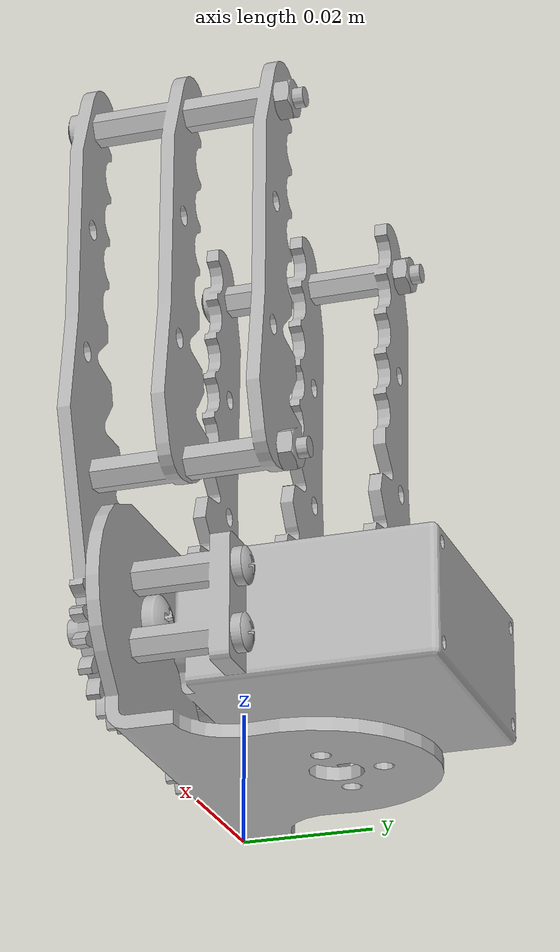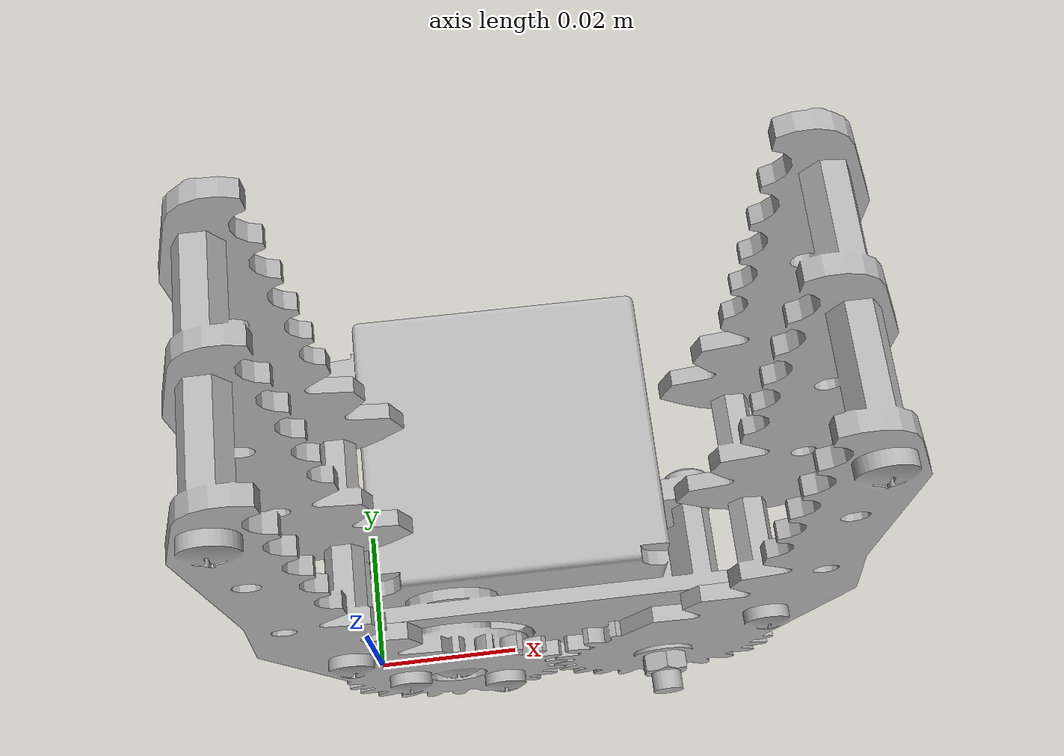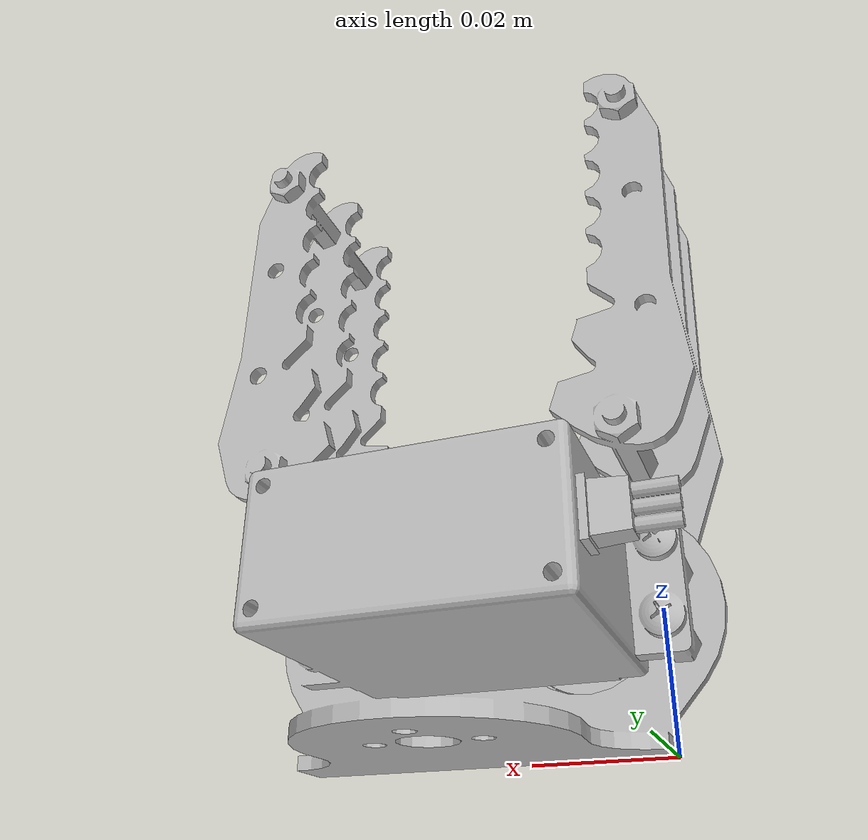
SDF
<?xml version="1.0"?>
<sdf version="1.9">
  <model name="gripper3">
    <static>false</static>
    <self_collide>false</self_collide>

    <link name="base_link">
      <pose>0 0 0 0 0 0</pose>
      <inertial>
        <pose>0.022563 0.018368 -0.0176 0 0 0</pose>
        <mass>0.085138</mass>
        <inertia>
          <ixx>1.5815e-05</ixx>
          <ixy>5.4955e-07</ixy>
          <ixz>-7.279e-07</ixz>
          <iyy>2.219e-05</iyy>
          <iyz>2.9639e-06</iyz>
          <izz>2.4841e-05</izz>
        </inertia>
      </inertial>

      <collision name="base_link_collision">
        <pose>0 0 0 0 0 0</pose>
        <geometry>
          <mesh>
            <scale>1 1 1</scale>
            <uri>model://gripper3/meshes/base_link.STL</uri>
          </mesh>
        </geometry>
      </collision>

      <visual name="base_link_visual">
        <pose>0 0 0 0 0 0</pose>
        <geometry>
          <mesh>
            <scale>1 1 1</scale>
            <uri>model://gripper3/meshes/base_link.STL</uri>
          </mesh>
        </geometry>
      </visual>
    </link>

    <link name="Empty_Link1">
      <pose>0.04 0 0.02 1.5708 0.90665 0</pose>
      <inertial>
        <pose>-0.021122 0.028354 -0.005583 0 0 0</pose>
        <mass>0.1</mass>
        <inertia>
          <ixx>1.1931e-05</ixx>
          <ixy>8.7376e-06</ixy>
          <ixz>-1.3248e-16</ixz>
          <iyy>8.789e-06</iyy>
          <iyz>-2.1751e-17</iyz>
          <izz>2.0324e-05</izz>
        </inertia>
      </inertial>

      <collision name="Empty_Link1_collision">
        <pose>0 0 0 0 0 0</pose>
        <geometry>
          <mesh>
            <scale>1 1 1</scale>
            <uri>model://gripper3/meshes/Empty_Link1.STL</uri>
          </mesh>
        </geometry>
        <surface>
          <friction>
            <ode>
              <mu>1</mu>
              <mu2>1</mu2>
            </ode>
          </friction>
        </surface>
      </collision>

      <visual name="Empty_Link1_visual">
        <pose>0 0 0 0 0 0</pose>
        <geometry>
          <mesh>
            <scale>1 1 1</scale>
            <uri>model://gripper3/meshes/Empty_Link1.STL</uri>
          </mesh>
        </geometry>
      </visual>
    </link>

    <joint name="joint1" type="revolute">
      <parent>base_link</parent>
      <child>Empty_Link1</child>
      <axis>
        <xyz>0 0 1</xyz>
        <limit>
          <lower>-0.5</lower>
          <upper>2.0</upper>
          <effort>2.0</effort>
          <velocity>1.0</velocity>
        </limit>
        <dynamics>
          <damping>0.01</damping>
          <friction>0</friction>
          <spring_reference>0</spring_reference>
          <spring_stiffness>0</spring_stiffness>
        </dynamics>
      </axis>
    </joint>

    <link name="Empty_Link2">
      <pose>0.012 0 0.0195 -1.5708 0.96069 3.14159</pose>
      <inertial>
        <pose>-0.019265 -0.025888 -0.004777 0 0 0</pose>
        <mass>0.1</mass>
        <inertia>
          <ixx>1.6519e-06</ixx>
          <ixy>-1.216e-06</ixy>
          <ixz>-7.2546e-17</ixz>
          <iyy>1.5595e-06</iyy>
          <iyz>-3.2073e-16</iyz>
          <izz>2.886e-06</izz>
        </inertia>
      </inertial>

      <collision name="Empty_Link2_collision">
        <pose>0 0 0 0 0 0</pose>
        <geometry>
          <mesh>
            <scale>1 1 1</scale>
            <uri>model://gripper3/meshes/Empty_Link2.STL</uri>
          </mesh>
        </geometry>
        <surface>
          <friction>
            <ode>
              <mu>1</mu>
              <mu2>1</mu2>
            </ode>
          </friction>
        </surface>
      </collision>

      <visual name="Empty_Link2_visual">
        <pose>0 0 0 0 0 0</pose>
        <geometry>
          <mesh>
            <scale>1 1 1</scale>
            <uri>model://gripper3/meshes/Empty_Link2.STL</uri>
          </mesh>
        </geometry>
      </visual>
    </link>

    <joint name="joint2" type="revolute">
      <parent>base_link</parent>
      <child>Empty_Link2</child>
      <axis>
        <xyz>0 0 -1</xyz>
        <limit>
          <lower>-0.5</lower>
          <upper>2.0</upper>
          <effort>2.0</effort>
          <velocity>1.0</velocity>
        </limit>
        <dynamics>
          <damping>0.01</damping>
          <friction>0</friction>
          <spring_reference>0</spring_reference>
          <spring_stiffness>0</spring_stiffness>
        </dynamics>
      </axis>
    </joint>

    <!-- Gazebo Sim / ROS 2 Humble: joint position control for finger 1 -->
    <plugin
      filename="gz-sim-joint-position-controller-system"
      name="gz::sim::systems::JointPositionController">
      <joint_name>joint1</joint_name>
      <joint_index>0</joint_index>
      <topic>/joint/gripper3/position_cmd</topic>
      <p_gain>2.0</p_gain>
      <i_gain>0.0</i_gain>
      <d_gain>0.05</d_gain>
      <i_max>0.0</i_max>
      <i_min>0.0</i_min>
      <cmd_max>2.0</cmd_max>
      <cmd_min>-2.0</cmd_min>
      <initial_position>0.0</initial_position>
    </plugin>

    <!-- Gazebo Sim / ROS 2 Humble: joint position control for finger 2.
         joint2 axis is 0 0 -1, so using the same target angle as joint1 produces symmetric motion. -->
    <plugin
      filename="gz-sim-joint-position-controller-system"
      name="gz::sim::systems::JointPositionController">
      <joint_name>joint2</joint_name>
      <joint_index>0</joint_index>
      <topic>/joint/gripper3/position_cmd</topic>
      <p_gain>2.0</p_gain>
      <i_gain>0.0</i_gain>
      <d_gain>0.05</d_gain>
      <i_max>0.0</i_max>
      <i_min>0.0</i_min>
      <cmd_max>2.0</cmd_max>
      <cmd_min>-2.0</cmd_min>
      <initial_position>0.0</initial_position>
    </plugin>

    <!-- Publish only gripper3 joint states -->
    <plugin
      filename="gz-sim-joint-state-publisher-system"
      name="gz::sim::systems::JointStatePublisher">
      <topic>/gripper3/joint_state</topic>
      <joint_name>joint1</joint_name>
      <joint_name>joint2</joint_name>
    </plugin>

  </model>
</sdf>
